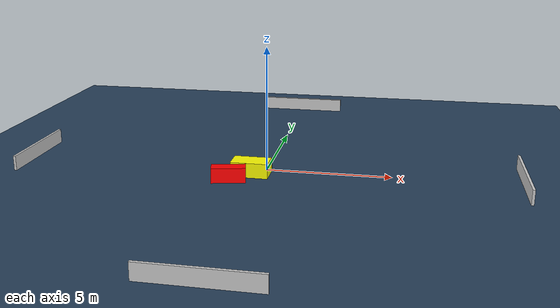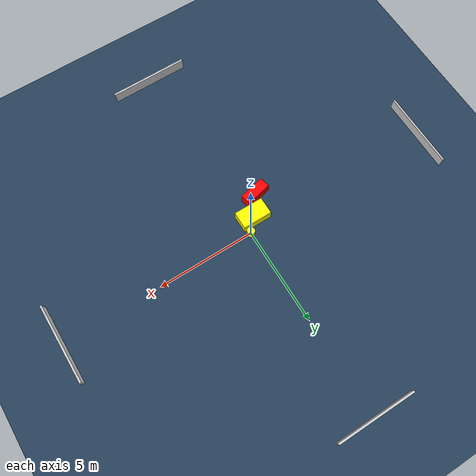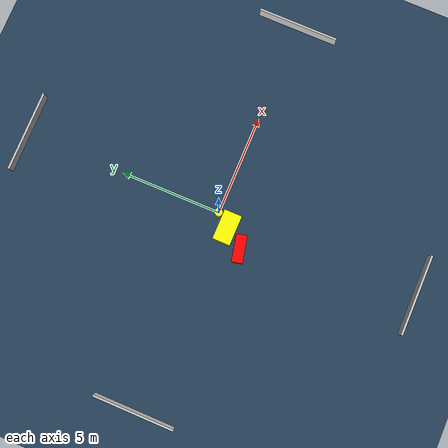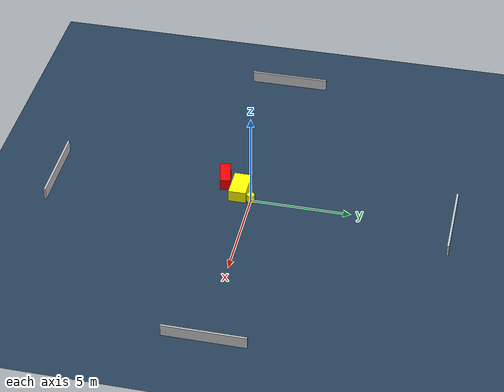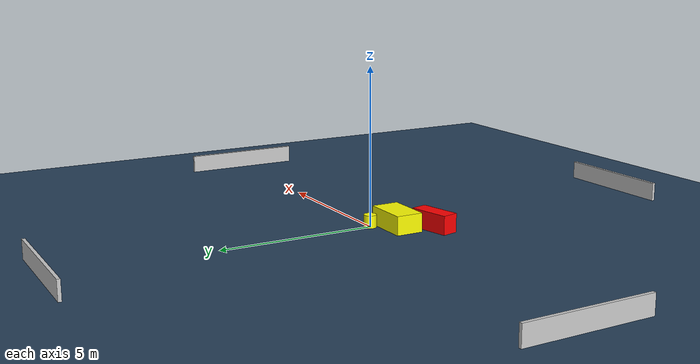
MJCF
<?xml version="1.0" ?>
<mujoco model="generated_environment">
  <option timestep="0.01" integrator="RK4" cone="elliptic"/>
  <default>
    <geom density="1"/>
  </default>
  <asset>
    <texture builtin="gradient" height="3072" name="skybox" rgb1="0.3 0.5 0.7" rgb2="0 0 0" type="skybox" width="512"/>
    <texture builtin="checker" height="300" name="groundplane" rgb1="0.2 0.3 0.4" rgb2="0.1 0.2 0.3" type="2d" width="300"/>
    <material name="groundplane" reflectance="0.2" texrepeat="5 5" texture="groundplane"/>
  </asset>
  <worldbody>
    <light dir="0 0 -1" directional="true" pos="0 0 1.5"/>
    <geom condim="3" friction="0.5 0.005 0.001" material="groundplane" name="floor" pos="0 0 0" size="0 0 0.05" type="plane"/>
    <body name="walls">
      <geom name="wall_1" condim="4" pos="-10.0 0.0 0.3" rgba="0.800000011920929 0.800000011920929 0.800000011920929 1.0" size="0.05 2.0 0.3" type="box"/>
      <geom name="wall_2" condim="4" pos="10.0 0.0 0.3" rgba="0.800000011920929 0.800000011920929 0.800000011920929 1.0" size="0.05 2.0 0.3" type="box"/>
      <geom name="wall_3" condim="4" pos="0.0 -10.0 0.3" rgba="0.800000011920929 0.800000011920929 0.800000011920929 1.0" size="2.0 0.05 0.3" type="box"/>
      <geom name="wall_4" condim="4" pos="0.0 10.0 0.3" rgba="0.800000011920929 0.800000011920929 0.800000011920929 1.0" size="2.0 0.05 0.3" type="box"/>
    </body>
    <body name="robot">
      <joint name="joint_x" type="slide" pos="0 0 0" axis="1 0 0"/>
      <joint name="joint_y" type="slide" pos="0 0 0" axis="0 1 0"/>
      <geom name="robot" type="cylinder" pos="0.0 0.0 0.2" size="0.2 0.2 0.0" mass="5.0" friction="1.0 0.005 0.0001" condim="4" rgba="1.0 1.0 0.0 1.0"/>
    </body>
    <body name="obstacle_1_movable">
      <geom name="obstacle_1_movable" condim="4" pos="-0.527225374875269 -0.6566486471598537 0.3" euler="0 0 179.7604490075293" friction="0.0 0.005 0.001" rgba="1.0 1.0 0.0 1.0" size="0.7463033756961417 0.4397002210337875 0.3" type="box" mass="0.1"/>
      <joint type="free"/>
    </body>
    <body name="obstacle_2_static">
      <geom name="obstacle_2_static" condim="4" pos="-1.2269511271478801 -1.5654840263554737 0.3" euler="0 0 282.6467214706656" friction="0.0 0.005 0.001" rgba="1.0 0.0 0.0 1.0" size="0.26620365671640267 0.6714659808822863 0.3" type="box"/>
    </body>
  </worldbody>
  <actuator>
    <motor name="actuator_x" joint="joint_x" gear="1" ctrlrange="-1 1"/>
    <motor name="actuator_y" joint="joint_y" gear="1" ctrlrange="-1 1"/>
  </actuator>
</mujoco>
